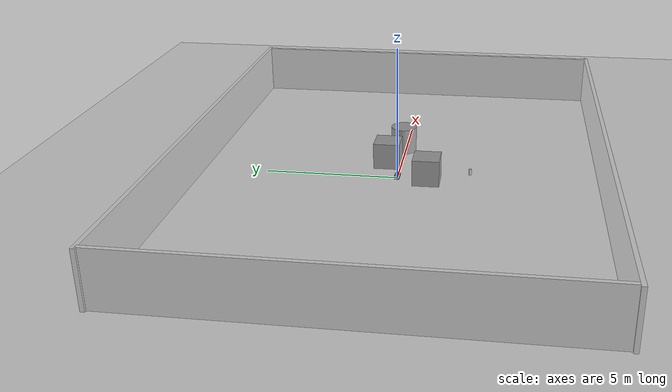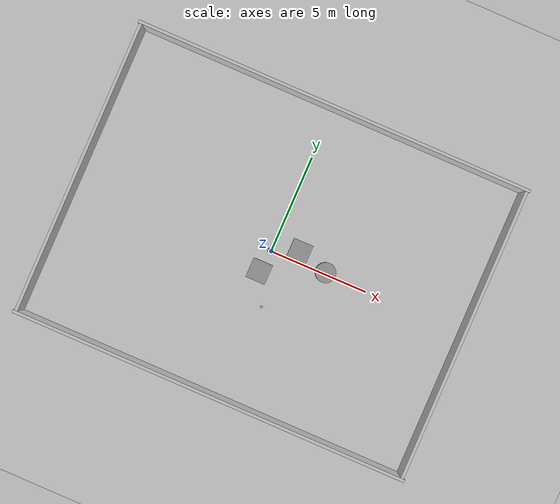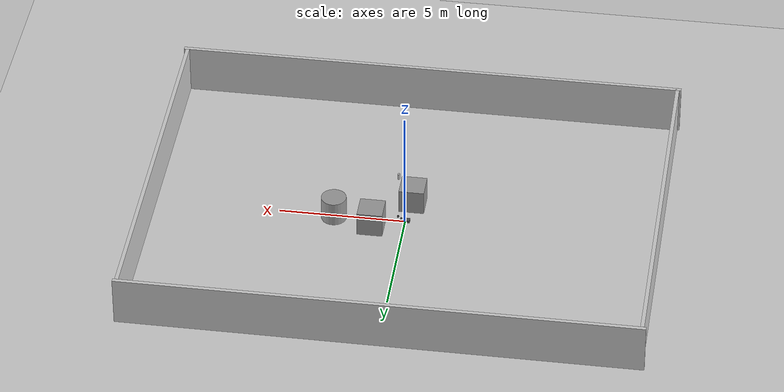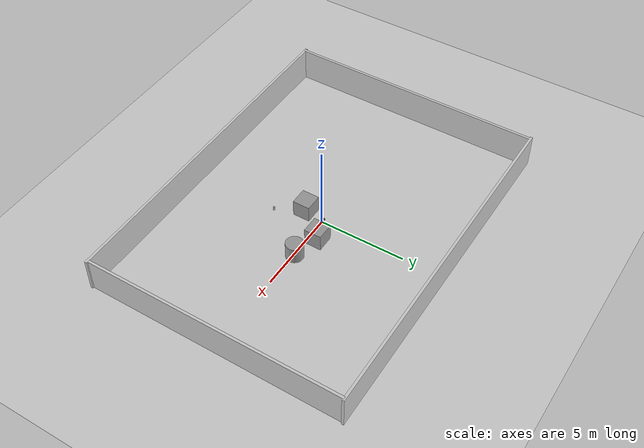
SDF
<sdf version="1.7">
 <world name="navigation_empty">
  <model name="ground_plane">
   <static>1</static>
   <link name="link">
    <collision name="collision">
     <geometry><plane><normal>0 0 1</normal><size>100 100</size></plane></geometry>
     <surface><friction><ode><mu>100</mu><mu2>50</mu2></ode></friction></surface>
    </collision>
    <visual name="visual">
     <cast_shadows>0</cast_shadows>
     <geometry><plane><normal>0 0 1</normal><size>100 100</size></plane></geometry>
     <material>
      <script><uri>file://media/materials/scripts/gazebo.material</uri><name>Gazebo/Grey</name></script>
     </material>
    </visual>
   </link>
  </model>
  <light name="sun" type="directional">
   <pose>0 0 10 0 -0 0</pose>
   <diffuse>0.8 0.8 0.8 1</diffuse>
   <specular>0.2 0.2 0.2 1</specular>
   <attenuation>
    <range>1000</range>
    <constant>0.9</constant>
    <linear>0.01</linear>
    <quadratic>0.001</quadratic>
   </attenuation>
   <direction>-0.5 0.1 -0.9</direction>
   <spot><inner_angle>0</inner_angle><outer_angle>0</outer_angle><falloff>0</falloff></spot>
  </light>
  <physics name="default" default="0" type="ode">
   <max_step_size>0.001</max_step_size>
   <real_time_factor>1</real_time_factor>
   <real_time_update_rate>1000</real_time_update_rate>
  </physics>
  <scene><ambient>0.5 0.5 0.5 1</ambient><background>0.7 0.8 0.9 1</background><shadows>1</shadows></scene>
  <model name="wall_south">
   <static>1</static>
   <pose>0 -7.5 1 0 -0 0</pose>
   <link name="link">
    <collision name="col"><geometry><box><size>20.3 0.15 2</size></box></geometry></collision>
    <visual name="vis">
     <geometry><box><size>20.3 0.15 2</size></box></geometry>
     <material><ambient>0.8 0.8 0.8 1</ambient><diffuse>0.8 0.8 0.8 1</diffuse></material>
    </visual>
   </link>
  </model>
  <model name="wall_north">
   <static>1</static>
   <pose>0 7.5 1 0 -0 0</pose>
   <link name="link">
    <collision name="col"><geometry><box><size>20.3 0.15 2</size></box></geometry></collision>
    <visual name="vis">
     <geometry><box><size>20.3 0.15 2</size></box></geometry>
     <material><ambient>0.8 0.8 0.8 1</ambient><diffuse>0.8 0.8 0.8 1</diffuse></material>
    </visual>
   </link>
  </model>
  <model name="wall_west">
   <static>1</static>
   <pose>-10 0 1 0 -0 0</pose>
   <link name="link">
    <collision name="col"><geometry><box><size>0.15 15 2</size></box></geometry></collision>
    <visual name="vis">
     <geometry><box><size>0.15 15 2</size></box></geometry>
     <material><ambient>0.8 0.8 0.8 1</ambient><diffuse>0.8 0.8 0.8 1</diffuse></material>
    </visual>
   </link>
  </model>
  <model name="wall_east">
   <static>1</static>
   <pose>10 0 1 0 -0 0</pose>
   <link name="link">
    <collision name="col"><geometry><box><size>0.15 15 2</size></box></geometry></collision>
    <visual name="vis">
     <geometry><box><size>0.15 15 2</size></box></geometry>
     <material><ambient>0.8 0.8 0.8 1</ambient><diffuse>0.8 0.8 0.8 1</diffuse></material>
    </visual>
   </link>
  </model>
  <gravity>0 0 -9.8</gravity>
  <magnetic_field>6e-06 2.3e-05 -4.2e-05</magnetic_field>
  <atmosphere type="adiabatic"/>
  <audio><device>default</device></audio>
  <spherical_coordinates>
   <surface_model>EARTH_WGS84</surface_model>
   <latitude_deg>0</latitude_deg>
   <longitude_deg>0</longitude_deg>
   <elevation>0</elevation>
   <heading_deg>0</heading_deg>
  </spherical_coordinates>
  <model name="go2">
   <link name="base_footprint">
    <inertial>
     <pose>0.032004 0 0.078608 0 -0 0</pose>
     <mass>7.222</mass>
     <inertia>
      <ixx>0.0330826</ixx>
      <ixy>0.00012166</ixy>
      <ixz>-0.0111752</ixz>
      <iyy>0.126462</iyy>
      <iyz>-3.12e-05</iyz>
      <izz>0.127282</izz>
     </inertia>
    </inertial>
    <collision name="base_footprint_fixed_joint_lump__base_link_collision">
     <pose>0 0 0.077 0 -0 0</pose>
     <geometry><box><size>0.4262 0.287 0.154</size></box></geometry>
     <surface><friction><ode><mu>0.8</mu><mu2>0.8</mu2></ode></friction></surface>
    </collision>
    <collision name="base_footprint_fixed_joint_lump__lidar_link_collision_1">
     <pose>0.2834 0 0.2395 0 -0 0</pose>
     <geometry><cylinder><length>0.06</length><radius>0.04</radius></cylinder></geometry>
    </collision>
    <visual name="base_footprint_visual"><geometry><box><size>0.001 0.001 0.001</size></box></geometry></visual>
    <visual name="base_footprint_fixed_joint_lump__base_link_visual_1">
     <pose>0 0 0.077 0 -0 0</pose>
     <geometry><box><size>0.3762 0.187 0.114</size></box></geometry>
     <material>
      <script><name>Gazebo/DarkGrey</name><uri>file://media/materials/scripts/gazebo.material</uri></script>
     </material>
    </visual>
    <visual name="base_footprint_fixed_joint_lump__lidar_link_visual_2">
     <pose>0.2834 0 0.2395 0 -0 0</pose>
     <geometry><cylinder><length>0.06</length><radius>0.04</radius></cylinder></geometry>
     <material>
      <script><name>Gazebo/Black</name><uri>file://media/materials/scripts/gazebo.material</uri></script>
     </material>
    </visual>
    <sensor name="go2_imu" type="imu">
     <always_on>1</always_on>
     <update_rate>250</update_rate>
     <plugin name="gazebo_ros_imu" filename="libgazebo_ros_imu_sensor.so">
      <ros><remapping>~/out:=/unilidar/imu</remapping></ros>
      <initial_orientation_as_reference>0</initial_orientation_as_reference>
     </plugin>
     <pose>0 0 0.077 0 -0 0</pose>
    </sensor>
    <sensor name="l1_lidar" type="gpu_ray">
     <visualize>0</visualize>
     <update_rate>11</update_rate>
     <ray>
      <scan>
       <horizontal>
        <samples>720</samples>
        <resolution>1</resolution>
        <min_angle>-3.14159</min_angle>
        <max_angle>3.14159</max_angle>
       </horizontal>
       <vertical>
        <samples>19</samples>
        <resolution>1</resolution>
        <min_angle>-0.785398</min_angle>
        <max_angle>0.785398</max_angle>
       </vertical>
      </scan>
      <range><min>0.05</min><max>30</max><resolution>0.001</resolution></range>
      <noise><type>gaussian</type><mean>0</mean><stddev>0.02</stddev></noise>
     </ray>
     <plugin name="gazebo_ros_l1_lidar" filename="libgazebo_ros_ray_sensor.so">
      <ros><remapping>~/out:=/unilidar/cloud</remapping></ros>
      <output_type>sensor_msgs/PointCloud2</output_type>
      <frame_name>lidar_link</frame_name>
     </plugin>
     <pose>0.2834 0 0.2395 0 -0 0</pose>
    </sensor>
   </link>
   <static>0</static>
   <plugin name="gazebo_ros_planar_move" filename="libgazebo_ros_planar_move.so">
    <ros><remapping>cmd_vel:=/cmd_vel</remapping><remapping>odom:=/odom</remapping></ros>
    <update_rate>50</update_rate>
    <publish_odom>1</publish_odom>
    <publish_odom_tf>1</publish_odom_tf>
    <odometry_frame>odom</odometry_frame>
    <robot_base_frame>base_footprint</robot_base_frame>
    <covariance_x>0.0001</covariance_x>
    <covariance_y>0.0001</covariance_y>
    <covariance_yaw>0.01</covariance_yaw>
   </plugin>
  </model>
  <model name="unit_box">
   <pose>1.26686 0.525225 0.499995 -1e-05 -0 0</pose>
   <link name="link">
    <inertial>
     <mass>1</mass>
     <inertia>
      <ixx>0.166667</ixx>
      <ixy>0</ixy>
      <ixz>0</ixz>
      <iyy>0.166667</iyy>
      <iyz>0</iyz>
      <izz>0.166667</izz>
     </inertia>
    </inertial>
    <collision name="collision"><geometry><box><size>1 1 1</size></box></geometry></collision>
    <visual name="visual">
     <geometry><box><size>1 1 1</size></box></geometry>
     <material>
      <script><name>Gazebo/Grey</name><uri>file://media/materials/scripts/gazebo.material</uri></script>
     </material>
    </visual>
   </link>
  </model>
  <model name="unit_box_0">
   <pose>-0.154104 -1.11377 0.499995 -1e-05 -0 0</pose>
   <link name="link">
    <inertial>
     <mass>1</mass>
     <inertia>
      <ixx>0.166667</ixx>
      <ixy>0</ixy>
      <ixz>0</ixz>
      <iyy>0.166667</iyy>
      <iyz>0</iyz>
      <izz>0.166667</izz>
     </inertia>
    </inertial>
    <collision name="collision"><geometry><box><size>1 1 1</size></box></geometry></collision>
    <visual name="visual">
     <geometry><box><size>1 1 1</size></box></geometry>
     <material>
      <script><name>Gazebo/Grey</name><uri>file://media/materials/scripts/gazebo.material</uri></script>
     </material>
    </visual>
   </link>
  </model>
  <model name="unit_cylinder">
   <pose>2.81711 0.090857 0.499993 -3e-06 -4e-06 -0</pose>
   <link name="link">
    <inertial>
     <mass>1</mass>
     <inertia><ixx>0.145833</ixx><ixy>0</ixy><ixz>0</ixz><iyy>0.145833</iyy><iyz>0</iyz><izz>0.125</izz></inertia>
    </inertial>
    <collision name="collision">
     <geometry><cylinder><radius>0.5</radius><length>1</length></cylinder></geometry>
    </collision>
    <visual name="visual">
     <geometry><cylinder><radius>0.5</radius><length>1</length></cylinder></geometry>
     <material>
      <script><name>Gazebo/Grey</name><uri>file://media/materials/scripts/gazebo.material</uri></script>
     </material>
    </visual>
   </link>
  </model>
  <model name="beer">
   <link name="link">
    <pose>0 0 0.115 0 -0 0</pose>
    <inertial>
     <mass>0.39</mass>
     <inertia><ixx>0.00058</ixx><ixy>0</ixy><ixz>0</ixz><iyy>0.00058</iyy><iyz>0</iyz><izz>0.00019</izz></inertia>
    </inertial>
    <collision name="collision">
     <geometry><cylinder><radius>0.055</radius><length>0.23</length></cylinder></geometry>
    </collision>
    <visual name="visual">
     <geometry><cylinder><radius>0.055</radius><length>0.23</length></cylinder></geometry>
     <material>
      <script>
       <uri>model://beer/materials/scripts</uri>
       <uri>model://beer/materials/textures</uri>
       <name>Beer/Diffuse</name>
      </script>
     </material>
    </visual>
   </link>
   <pose>0.634663 -2.69421 -7e-06 -1e-06 -0 -2e-06</pose>
  </model>
 </world>
</sdf>
